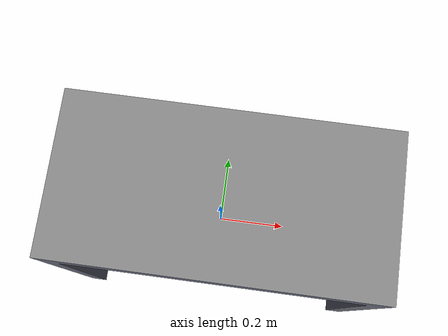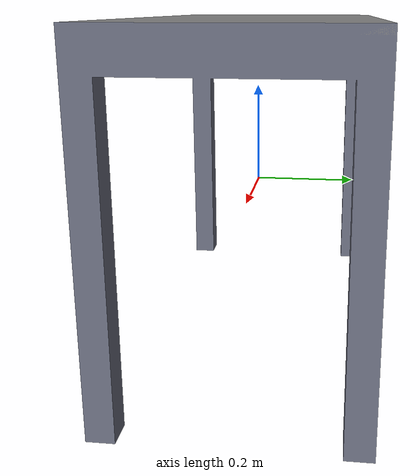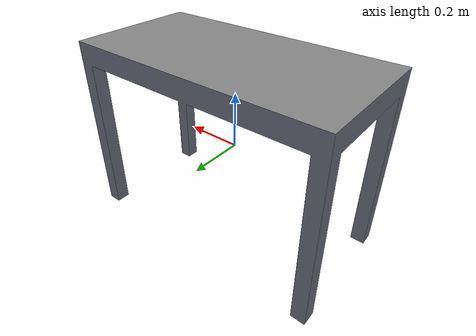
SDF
<?xml version='1.0'?>
<sdf version='1.6'>
  <model name='table_dining'>
    <link name='table_link'>
      <pose frame=''>0 0 0 0 0 0</pose>
       <visual name='visual'>
        <pose frame=''>0 0 0 0 0 0</pose>
        <geometry>
          <mesh>
            <uri>model://table_dining/meshes/table2.dae</uri>
            <scale>1 1 1</scale>
          </mesh>
        </geometry>
        <material>
          <script>
            <uri>model://table_dining/materials/scripts</uri>
            <uri>model://table_dining/materials/textures</uri>
            <name>dining_table</name>
          </script>
        </material>
        <cast_shadows>1</cast_shadows>
        <transparency>0</transparency>
      </visual>
       <inertial>
        <mass>1.0</mass>
        <inertia> <!-- inertias are tricky to compute -->
          <ixx>0.083</ixx>       <!-- for a box: ixx = 0.083 * mass * (y*y + z*z) -->
          <ixy>0.0</ixy>         <!-- for a box: ixy = 0 -->
          <ixz>0.0</ixz>         <!-- for a box: ixz = 0 -->
          <iyy>0.083</iyy>       <!-- for a box: iyy = 0.083 * mass * (x*x + z*z) -->
          <iyz>0.0</iyz>         <!-- for a box: iyz = 0 -->
          <izz>0.083</izz>       <!-- for a box: izz = 0.083 * mass * (x*x + y*y) -->
        </inertia>
      </inertial>
      <collision name='collision'>
        <laser_retro>0</laser_retro>
        <max_contacts>10</max_contacts>
        <pose frame=''>0 0 0 0 0 0</pose>
        <geometry>
          <mesh>
            <uri>model://table_dining/meshes/table2.dae</uri>
            <scale>1 1 1</scale>
          </mesh>
        </geometry>
       </collision>
    </link>
    <static>1</static>
    <allow_auto_disable>1</allow_auto_disable>
  </model>
</sdf>
